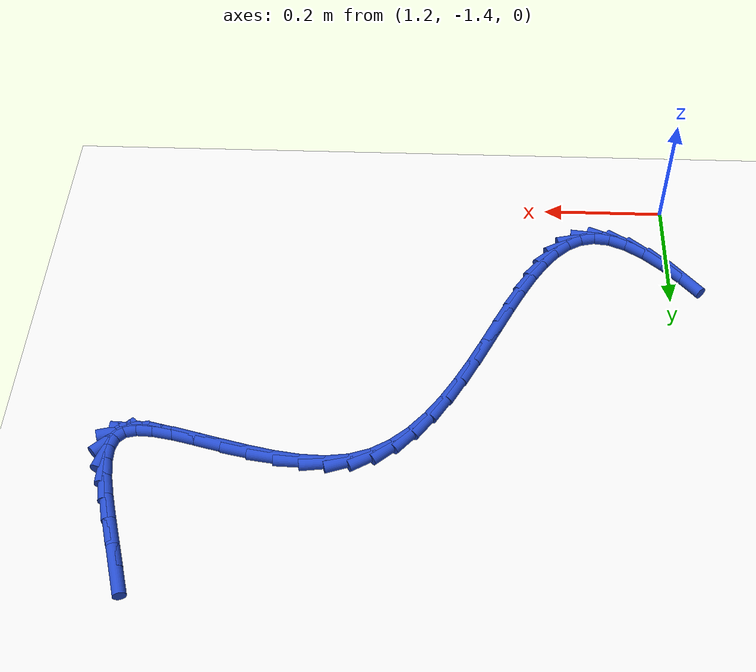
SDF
<sdf version="1.6">
 <world name="default">
  <model name="ground_plane">
   <static>1</static>
   <link name="link">
    <collision name="collision">
     <geometry><plane><normal>0 0 1</normal><size>100 100</size></plane></geometry>
     <surface><friction><ode><mu>100</mu><mu2>50</mu2></ode></friction></surface>
    </collision>
    <visual name="visual">
     <cast_shadows>0</cast_shadows>
     <geometry><plane><normal>0 0 1</normal><size>100 100</size></plane></geometry>
     <material>
      <script><uri>file://media/materials/scripts/gazebo.material</uri><name>Gazebo/WhiteGlow</name></script>
     </material>
    </visual>
   </link>
  </model>
  <model name="line">
   <link name="link_140">
    <pose>2.018336927013235 -0.6687328892614344 0.01 0 1.57 -1.2774247917975932</pose>
    <collision name="collision">
     <geometry><cylinder><radius>0.01</radius><length>0.08</length></cylinder></geometry>
    </collision>
    <visual name="visual">
     <material>
      <script><name>Gazebo/Blue</name><uri>file://media/materials/scripts/gazebo.material</uri></script>
     </material>
     <geometry><cylinder><radius>0.01</radius><length>0.08</length></cylinder></geometry>
    </visual>
   </link>
   <link name="link_141">
    <pose>2.0309430263357666 -0.710462743099012 0.01 0 1.57 -1.2726497379111128</pose>
    <collision name="collision">
     <geometry><cylinder><radius>0.01</radius><length>0.08</length></cylinder></geometry>
    </collision>
    <visual name="visual">
     <material>
      <script><name>Gazebo/Blue</name><uri>file://media/materials/scripts/gazebo.material</uri></script>
     </material>
     <geometry><cylinder><radius>0.01</radius><length>0.08</length></cylinder></geometry>
    </visual>
   </link>
   <link name="link_142">
    <pose>2.04313339295846 -0.7501311546563578 0.01 0 1.57 -1.2872565334852133</pose>
    <collision name="collision">
     <geometry><cylinder><radius>0.01</radius><length>0.08</length></cylinder></geometry>
    </collision>
    <visual name="visual">
     <material>
      <script><name>Gazebo/Blue</name><uri>file://media/materials/scripts/gazebo.material</uri></script>
     </material>
     <geometry><cylinder><radius>0.01</radius><length>0.08</length></cylinder></geometry>
    </visual>
   </link>
   <link name="link_143">
    <pose>2.0538764592547603 -0.786999403857877 0.01 0 1.57 -1.3277428639340296</pose>
    <collision name="collision">
     <geometry><cylinder><radius>0.01</radius><length>0.08</length></cylinder></geometry>
    </collision>
    <visual name="visual">
     <material>
      <script><name>Gazebo/Blue</name><uri>file://media/materials/scripts/gazebo.material</uri></script>
     </material>
     <geometry><cylinder><radius>0.01</radius><length>0.08</length></cylinder></geometry>
    </visual>
   </link>
   <link name="link_144">
    <pose>2.0621406575981127 -0.820328770627976 0.01 0 1.57 -1.4086029341384563</pose>
    <collision name="collision">
     <geometry><cylinder><radius>0.01</radius><length>0.08</length></cylinder></geometry>
    </collision>
    <visual name="visual">
     <material>
      <script><name>Gazebo/Blue</name><uri>file://media/materials/scripts/gazebo.material</uri></script>
     </material>
     <geometry><cylinder><radius>0.01</radius><length>0.08</length></cylinder></geometry>
    </visual>
   </link>
   <link name="link_145">
    <pose>2.066894420361963 -0.8493805348910598 0.01 0 1.57 -1.5619862503322621</pose>
    <collision name="collision">
     <geometry><cylinder><radius>0.01</radius><length>0.08</length></cylinder></geometry>
    </collision>
    <visual name="visual">
     <material>
      <script><name>Gazebo/Blue</name><uri>file://media/materials/scripts/gazebo.material</uri></script>
     </material>
     <geometry><cylinder><radius>0.01</radius><length>0.08</length></cylinder></geometry>
    </visual>
   </link>
   <link name="link_146">
    <pose>2.067106179919755 -0.8734159765715341 0.01 0 1.57 1.2854890242115447</pose>
    <collision name="collision">
     <geometry><cylinder><radius>0.01</radius><length>0.08</length></cylinder></geometry>
    </collision>
    <visual name="visual">
     <material>
      <script><name>Gazebo/Blue</name><uri>file://media/materials/scripts/gazebo.material</uri></script>
     </material>
     <geometry><cylinder><radius>0.01</radius><length>0.08</length></cylinder></geometry>
    </visual>
   </link>
   <link name="link_147">
    <pose>2.0617443686449346 -0.8916963755938052 0.01 0 1.57 0.777807310292257</pose>
    <collision name="collision">
     <geometry><cylinder><radius>0.01</radius><length>0.08</length></cylinder></geometry>
    </collision>
    <visual name="visual">
     <material>
      <script><name>Gazebo/Blue</name><uri>file://media/materials/scripts/gazebo.material</uri></script>
     </material>
     <geometry><cylinder><radius>0.01</radius><length>0.08</length></cylinder></geometry>
    </visual>
   </link>
   <link name="link_148">
    <pose>2.0497774189109474 -0.9034830118822776 0.01 0 1.57 0.24760509914422238</pose>
    <collision name="collision">
     <geometry><cylinder><radius>0.01</radius><length>0.08</length></cylinder></geometry>
    </collision>
    <visual name="visual">
     <material>
      <script><name>Gazebo/Blue</name><uri>file://media/materials/scripts/gazebo.material</uri></script>
     </material>
     <geometry><cylinder><radius>0.01</radius><length>0.08</length></cylinder></geometry>
    </visual>
   </link>
   <link name="link_149">
    <pose>2.0304978396749376 -0.9083567435324632 0.01 0 1.57 -0.03857058658384005</pose>
    <collision name="collision">
     <geometry><cylinder><radius>0.01</radius><length>0.08</length></cylinder></geometry>
    </collision>
    <visual name="visual">
     <material>
      <script><name>Gazebo/Blue</name><uri>file://media/materials/scripts/gazebo.material</uri></script>
     </material>
     <geometry><cylinder><radius>0.01</radius><length>0.08</length></cylinder></geometry>
    </visual>
   </link>
   <link name="link_150">
    <pose>2.0046807606323878 -0.9073604695519086 0.01 0 1.57 -0.17179008994097228</pose>
    <collision name="collision">
     <geometry><cylinder><radius>0.01</radius><length>0.08</length></cylinder></geometry>
    </collision>
    <visual name="visual">
     <material>
      <script><name>Gazebo/Blue</name><uri>file://media/materials/scripts/gazebo.material</uri></script>
     </material>
     <geometry><cylinder><radius>0.01</radius><length>0.08</length></cylinder></geometry>
    </visual>
   </link>
   <link name="link_151">
    <pose>1.973525051221944 -0.9019549468834643 0.01 0 1.57 -0.23241035210073577</pose>
    <collision name="collision">
     <geometry><cylinder><radius>0.01</radius><length>0.08</length></cylinder></geometry>
    </collision>
    <visual name="visual">
     <material>
      <script><name>Gazebo/Blue</name><uri>file://media/materials/scripts/gazebo.material</uri></script>
     </material>
     <geometry><cylinder><radius>0.01</radius><length>0.08</length></cylinder></geometry>
    </visual>
   </link>
   <link name="link_152">
    <pose>1.9382296141120987 -0.8936009652385742 0.01 0 1.57 -0.2519222484231991</pose>
    <collision name="collision">
     <geometry><cylinder><radius>0.01</radius><length>0.08</length></cylinder></geometry>
    </collision>
    <visual name="visual">
     <material>
      <script><name>Gazebo/Blue</name><uri>file://media/materials/scripts/gazebo.material</uri></script>
     </material>
     <geometry><cylinder><radius>0.01</radius><length>0.08</length></cylinder></geometry>
    </visual>
   </link>
   <link name="link_153">
    <pose>1.8999933519713461 -0.8837593143286817 0.01 0 1.57 -0.24200977749592317</pose>
    <collision name="collision">
     <geometry><cylinder><radius>0.01</radius><length>0.08</length></cylinder></geometry>
    </collision>
    <visual name="visual">
     <material>
      <script><name>Gazebo/Blue</name><uri>file://media/materials/scripts/gazebo.material</uri></script>
     </material>
     <geometry><cylinder><radius>0.01</radius><length>0.08</length></cylinder></geometry>
    </visual>
   </link>
   <link name="link_154">
    <pose>1.860015167468179 -0.8738907838652314 0.01 0 1.57 -0.20522278964651094</pose>
    <collision name="collision">
     <geometry><cylinder><radius>0.01</radius><length>0.08</length></cylinder></geometry>
    </collision>
    <visual name="visual">
     <material>
      <script><name>Gazebo/Blue</name><uri>file://media/materials/scripts/gazebo.material</uri></script>
     </material>
     <geometry><cylinder><radius>0.01</radius><length>0.08</length></cylinder></geometry>
    </visual>
   </link>
   <link name="link_155">
    <pose>1.8194939632710887 -0.8654561635596659 0.01 0 1.57 -0.13808158130428524</pose>
    <collision name="collision">
     <geometry><cylinder><radius>0.01</radius><length>0.08</length></cylinder></geometry>
    </collision>
    <visual name="visual">
     <material>
      <script><name>Gazebo/Blue</name><uri>file://media/materials/scripts/gazebo.material</uri></script>
     </material>
     <geometry><cylinder><radius>0.01</radius><length>0.08</length></cylinder></geometry>
    </visual>
   </link>
   <link name="link_156">
    <pose>1.7796286420485714 -0.8599162431234303 0.01 0 1.57 -0.031150514105594686</pose>
    <collision name="collision">
     <geometry><cylinder><radius>0.01</radius><length>0.08</length></cylinder></geometry>
    </collision>
    <visual name="visual">
     <material>
      <script><name>Gazebo/Blue</name><uri>file://media/materials/scripts/gazebo.material</uri></script>
     </material>
     <geometry><cylinder><radius>0.01</radius><length>0.08</length></cylinder></geometry>
    </visual>
   </link>
   <link name="link_157">
    <pose>1.7416181064691176 -0.8587318122679675 0.01 0 1.57 0.12737649729061284</pose>
    <collision name="collision">
     <geometry><cylinder><radius>0.01</radius><length>0.08</length></cylinder></geometry>
    </collision>
    <visual name="visual">
     <material>
      <script><name>Gazebo/Blue</name><uri>file://media/materials/scripts/gazebo.material</uri></script>
     </material>
     <geometry><cylinder><radius>0.01</radius><length>0.08</length></cylinder></geometry>
    </visual>
   </link>
   <link name="link_158">
    <pose>1.7064389845136443 -0.8632371982840912 0.01 0 1.57 0.3277304731771296</pose>
    <collision name="collision">
     <geometry><cylinder><radius>0.01</radius><length>0.08</length></cylinder></geometry>
    </collision>
    <visual name="visual">
     <material>
      <script><name>Gazebo/Blue</name><uri>file://media/materials/scripts/gazebo.material</uri></script>
     </material>
     <geometry><cylinder><radius>0.01</radius><length>0.08</length></cylinder></geometry>
    </visual>
   </link>
   <link name="link_159">
    <pose>1.6741186022911807 -0.8742258385759468 0.01 0 1.57 0.5379420987541471</pose>
    <collision name="collision">
     <geometry><cylinder><radius>0.01</radius><length>0.08</length></cylinder></geometry>
    </collision>
    <visual name="visual">
     <material>
      <script><name>Gazebo/Blue</name><uri>file://media/materials/scripts/gazebo.material</uri></script>
     </material>
     <geometry><cylinder><radius>0.01</radius><length>0.08</length></cylinder></geometry>
    </visual>
   </link>
   <link name="link_160">
    <pose>1.6444162014854666 -0.8919473520994567 0.01 0 1.57 0.7129161816521181</pose>
    <collision name="collision">
     <geometry><cylinder><radius>0.01</radius><length>0.08</length></cylinder></geometry>
    </collision>
    <visual name="visual">
     <material>
      <script><name>Gazebo/Blue</name><uri>file://media/materials/scripts/gazebo.material</uri></script>
     </material>
     <geometry><cylinder><radius>0.01</radius><length>0.08</length></cylinder></geometry>
    </visual>
   </link>
   <link name="link_161">
    <pose>1.6170525349875973 -0.9156063078159207 0.01 0 1.57 0.8469021383877765</pose>
    <collision name="collision">
     <geometry><cylinder><radius>0.01</radius><length>0.08</length></cylinder></geometry>
    </collision>
    <visual name="visual">
     <material>
      <script><name>Gazebo/Blue</name><uri>file://media/materials/scripts/gazebo.material</uri></script>
     </material>
     <geometry><cylinder><radius>0.01</radius><length>0.08</length></cylinder></geometry>
    </visual>
   </link>
   <link name="link_162">
    <pose>1.5917421430274556 -0.944238577547109 0.01 0 1.57 0.9459519904789574</pose>
    <collision name="collision">
     <geometry><cylinder><radius>0.01</radius><length>0.08</length></cylinder></geometry>
    </collision>
    <visual name="visual">
     <material>
      <script><name>Gazebo/Blue</name><uri>file://media/materials/scripts/gazebo.material</uri></script>
     </material>
     <geometry><cylinder><radius>0.01</radius><length>0.08</length></cylinder></geometry>
    </visual>
   </link>
   <link name="link_163">
    <pose>1.5681995658349286 -0.9768800331147901 0.01 0 1.57 1.0171257790250556</pose>
    <collision name="collision">
     <geometry><cylinder><radius>0.01</radius><length>0.08</length></cylinder></geometry>
    </collision>
    <visual name="visual">
     <material>
      <script><name>Gazebo/Blue</name><uri>file://media/materials/scripts/gazebo.material</uri></script>
     </material>
     <geometry><cylinder><radius>0.01</radius><length>0.08</length></cylinder></geometry>
    </visual>
   </link>
   <link name="link_164">
    <pose>1.5461393436398982 -1.0125665463407338 0.01 0 1.57 1.0661003708520767</pose>
    <collision name="collision">
     <geometry><cylinder><radius>0.01</radius><length>0.08</length></cylinder></geometry>
    </collision>
    <visual name="visual">
     <material>
      <script><name>Gazebo/Blue</name><uri>file://media/materials/scripts/gazebo.material</uri></script>
     </material>
     <geometry><cylinder><radius>0.01</radius><length>0.08</length></cylinder></geometry>
    </visual>
   </link>
   <link name="link_165">
    <pose>1.5252760166722499 -1.0503339890467096 0.01 0 1.57 1.096715868194943</pose>
    <collision name="collision">
     <geometry><cylinder><radius>0.01</radius><length>0.08</length></cylinder></geometry>
    </collision>
    <visual name="visual">
     <material>
      <script><name>Gazebo/Blue</name><uri>file://media/materials/scripts/gazebo.material</uri></script>
     </material>
     <geometry><cylinder><radius>0.01</radius><length>0.08</length></cylinder></geometry>
    </visual>
   </link>
   <link name="link_166">
    <pose>1.5053241251618672 -1.0892182330544868 0.01 0 1.57 1.1111023570804686</pose>
    <collision name="collision">
     <geometry><cylinder><radius>0.01</radius><length>0.08</length></cylinder></geometry>
    </collision>
    <visual name="visual">
     <material>
      <script><name>Gazebo/Blue</name><uri>file://media/materials/scripts/gazebo.material</uri></script>
     </material>
     <geometry><cylinder><radius>0.01</radius><length>0.08</length></cylinder></geometry>
    </visual>
   </link>
   <link name="link_167">
    <pose>1.4859982093386341 -1.1282551501858358 0.01 0 1.57 1.1098171112216075</pose>
    <collision name="collision">
     <geometry><cylinder><radius>0.01</radius><length>0.08</length></cylinder></geometry>
    </collision>
    <visual name="visual">
     <material>
      <script><name>Gazebo/Blue</name><uri>file://media/materials/scripts/gazebo.material</uri></script>
     </material>
     <geometry><cylinder><radius>0.01</radius><length>0.08</length></cylinder></geometry>
    </visual>
   </link>
   <link name="link_168">
    <pose>1.467012809432436 -1.1664806122625253 0.01 0 1.57 1.0917866777788205</pose>
    <collision name="collision">
     <geometry><cylinder><radius>0.01</radius><length>0.08</length></cylinder></geometry>
    </collision>
    <visual name="visual">
     <material>
      <script><name>Gazebo/Blue</name><uri>file://media/materials/scripts/gazebo.material</uri></script>
     </material>
     <geometry><cylinder><radius>0.01</radius><length>0.08</length></cylinder></geometry>
    </visual>
   </link>
   <link name="link_169">
    <pose>1.4480824656731555 -1.2029304911063248 0.01 0 1.57 1.053938774271786</pose>
    <collision name="collision">
     <geometry><cylinder><radius>0.01</radius><length>0.08</length></cylinder></geometry>
    </collision>
    <visual name="visual">
     <material>
      <script><name>Gazebo/Blue</name><uri>file://media/materials/scripts/gazebo.material</uri></script>
     </material>
     <geometry><cylinder><radius>0.01</radius><length>0.08</length></cylinder></geometry>
    </visual>
   </link>
   <link name="link_170">
    <pose>1.428921718290678 -1.2366406585390053 0.01 0 1.57 0.99039044351887</pose>
    <collision name="collision">
     <geometry><cylinder><radius>0.01</radius><length>0.08</length></cylinder></geometry>
    </collision>
    <visual name="visual">
     <material>
      <script><name>Gazebo/Blue</name><uri>file://media/materials/scripts/gazebo.material</uri></script>
     </material>
     <geometry><cylinder><radius>0.01</radius><length>0.08</length></cylinder></geometry>
    </visual>
   </link>
   <link name="link_171">
    <pose>1.4092451075148877 -1.2666469863823342 0.01 0 1.57 0.8910879670039631</pose>
    <collision name="collision">
     <geometry><cylinder><radius>0.01</radius><length>0.08</length></cylinder></geometry>
    </collision>
    <visual name="visual">
     <material>
      <script><name>Gazebo/Blue</name><uri>file://media/materials/scripts/gazebo.material</uri></script>
     </material>
     <geometry><cylinder><radius>0.01</radius><length>0.08</length></cylinder></geometry>
    </visual>
   </link>
   <link name="link_172">
    <pose>1.3887671735756693 -1.2919853464580822 0.01 0 1.57 0.7403980672679251</pose>
    <collision name="collision">
     <geometry><cylinder><radius>0.01</radius><length>0.08</length></cylinder></geometry>
    </collision>
    <visual name="visual">
     <material>
      <script><name>Gazebo/Blue</name><uri>file://media/materials/scripts/gazebo.material</uri></script>
     </material>
     <geometry><cylinder><radius>0.01</radius><length>0.08</length></cylinder></geometry>
    </visual>
   </link>
   <link name="link_173">
    <pose>1.3672024567029055 -1.311691610588018 0.01 0 1.57 0.5192514750624696</pose>
    <collision name="collision">
     <geometry><cylinder><radius>0.01</radius><length>0.08</length></cylinder></geometry>
    </collision>
    <visual name="visual">
     <material>
      <script><name>Gazebo/Blue</name><uri>file://media/materials/scripts/gazebo.material</uri></script>
     </material>
     <geometry><cylinder><radius>0.01</radius><length>0.08</length></cylinder></geometry>
    </visual>
   </link>
   <link name="link_174">
    <pose>1.3442654971264822 -1.3248016505939122 0.01 0 1.57 0.22192925216835055</pose>
    <collision name="collision">
     <geometry><cylinder><radius>0.01</radius><length>0.08</length></cylinder></geometry>
    </collision>
    <visual name="visual">
     <material>
      <script><name>Gazebo/Blue</name><uri>file://media/materials/scripts/gazebo.material</uri></script>
     </material>
     <geometry><cylinder><radius>0.01</radius><length>0.08</length></cylinder></geometry>
    </visual>
   </link>
   <link name="link_175">
    <pose>1.3196708350762827 -1.3303513382975336 0.01 0 1.57 -0.11163032217190479</pose>
    <collision name="collision">
     <geometry><cylinder><radius>0.01</radius><length>0.08</length></cylinder></geometry>
    </collision>
    <visual name="visual">
     <material>
      <script><name>Gazebo/Blue</name><uri>file://media/materials/scripts/gazebo.material</uri></script>
     </material>
     <geometry><cylinder><radius>0.01</radius><length>0.08</length></cylinder></geometry>
    </visual>
   </link>
   <link name="link_176">
    <pose>1.2931330107821912 -1.3273765455206519 0.01 0 1.57 -0.3997134738520758</pose>
    <collision name="collision">
     <geometry><cylinder><radius>0.01</radius><length>0.08</length></cylinder></geometry>
    </collision>
    <visual name="visual">
     <material>
      <script><name>Gazebo/Blue</name><uri>file://media/materials/scripts/gazebo.material</uri></script>
     </material>
     <geometry><cylinder><radius>0.01</radius><length>0.08</length></cylinder></geometry>
    </visual>
   </link>
   <link name="link_177">
    <pose>1.2645785977297626 -1.3153135762272095 0.01 0 1.57 -0.5884966985990939</pose>
    <collision name="collision">
     <geometry><cylinder><radius>0.01</radius><length>0.08</length></cylinder></geometry>
    </collision>
    <visual name="visual">
     <material>
      <script><name>Gazebo/Blue</name><uri>file://media/materials/scripts/gazebo.material</uri></script>
     </material>
     <geometry><cylinder><radius>0.01</radius><length>0.08</length></cylinder></geometry>
    </visual>
   </link>
   <link name="link_178">
    <pose>1.2349687195327537 -1.295552518105836 0.01 0 1.57 -0.7141383407267253</pose>
    <collision name="collision">
     <geometry><cylinder><radius>0.01</radius><length>0.08</length></cylinder></geometry>
    </collision>
    <visual name="visual">
     <material>
      <script><name>Gazebo/Blue</name><uri>file://media/materials/scripts/gazebo.material</uri></script>
     </material>
     <geometry><cylinder><radius>0.01</radius><length>0.08</length></cylinder></geometry>
    </visual>
   </link>
   <link name="link_179">
    <pose>1.2055768219872802 -1.2700770880646979 0.01 0 1.57 -0.8042739171602623</pose>
    <collision name="collision">
     <geometry><cylinder><radius>0.01</radius><length>0.08</length></cylinder></geometry>
    </collision>
    <visual name="visual">
     <material>
      <script><name>Gazebo/Blue</name><uri>file://media/materials/scripts/gazebo.material</uri></script>
     </material>
     <geometry><cylinder><radius>0.01</radius><length>0.08</length></cylinder></geometry>
    </visual>
   </link>
   <link name="link_180">
    <pose>1.1772478648536246 -1.240657962872229 0.01 0 1.57 -0.8648159388119991</pose>
    <collision name="collision">
     <geometry><cylinder><radius>0.01</radius><length>0.08</length></cylinder></geometry>
    </collision>
    <visual name="visual">
     <material>
      <script><name>Gazebo/Blue</name><uri>file://media/materials/scripts/gazebo.material</uri></script>
     </material>
     <geometry><cylinder><radius>0.01</radius><length>0.08</length></cylinder></geometry>
    </visual>
   </link>
  </model>
 </world>
</sdf>
